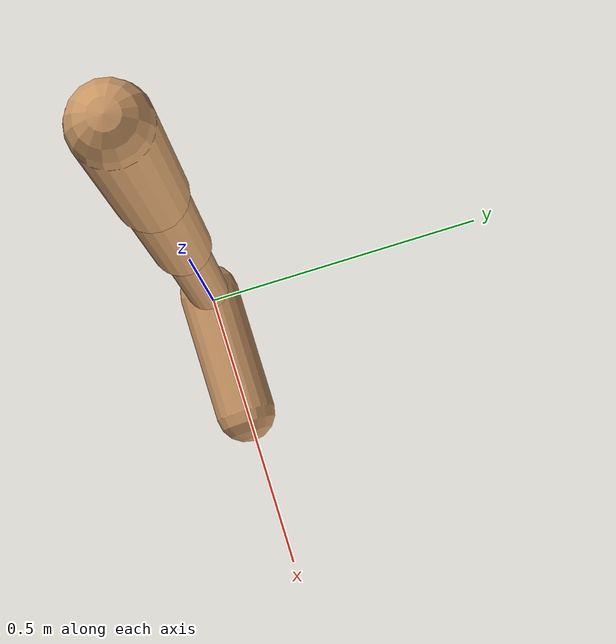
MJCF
<mujoco model="walker2d">
  <compiler angle="degree" coordinate="global" inertiafromgeom="true" />
  <default>
    <joint armature="0.01" damping=".1" limited="true" />
    <geom conaffinity="0" condim="3" contype="1" density="1000" friction="0.8 .1 .1" rgba="0.8 0.6 .4 1" />
  </default>
  <option integrator="RK4" timestep="0.002" />
  <worldbody>

    <body name="torso" pos="0 0 -0.06903565974591537">
      <joint armature="0" axis="1 0 0" damping="0" limited="false" name="ignorex" pos="0 0 0" stiffness="0" type="slide" />
      <joint armature="0" axis="0 0 1" damping="0" limited="false" name="ignorez" pos="0 0 0" ref="1.25" stiffness="0" type="slide" />
      <joint armature="0" axis="0 1 0" damping="0" limited="false" name="ignorey" pos="0 0 0" stiffness="0" type="hinge" />
      <geom fromto="0 0 1.45 0 0 1.05" name="torso_geom" size="0.049674926190524604" type="capsule" />
      <body name="thigh">
        <joint axis="0 -1 0" name="thigh_joint" pos="0 0 1.05" range="-150 0" type="hinge" />
        <geom fromto="0.0 0.0 1.05 0.0 0.0 0.6327011019849073" name="thigh_geom" size="0.045247690607623584" type="capsule" />
        <body name="leg" pos="0.0 0.0 0.03270110198490728">
          <joint axis="0 -1 0" name="leg_joint" pos="0 0 0.6" range="-150 0" type="hinge" />
          <geom fromto="0.0 0.0 0.6 0.0 0.0 0.13633455776100808" name="leg_geom" size="0.03619815248609887" type="capsule" />
          <body name="foot" pos="0.0 0.0 0.03633455776100808">
            <joint axis="0 -1 0" name="foot_joint" pos="0 0 0.1" range="-45 45" type="hinge" />
            <geom fromto="-0.0 0.0 0.1 0.22292688532180915 0.0 0.1" name="foot_geom" size="0.0520970020601762" type="capsule" />
          </body>
        </body>
      </body>

      <body name="thigh_left">
        <joint axis="0 -1 0" name="thigh_left_joint" pos="0 0 1.05" range="-150 0" type="hinge" />
        <geom fromto="0.0 0.0 1.05 0.0 0.0 0.6327011019849073" name="thigh_left_geom" rgba=".7 .3 .6 1" size="0.045247690607623584" type="capsule" />
        <body name="leg_left" pos="0.0 0.0 0.03270110198490728">
          <joint axis="0 -1 0" name="leg_left_joint" pos="0 0 0.6" range="-150 0" type="hinge" />
          <geom fromto="0.0 0.0 0.6 0.0 0.0 0.13633455776100808" name="leg_left_geom" rgba=".7 .3 .6 1" size="0.03619815248609887" type="capsule" />
          <body name="foot_left" pos="0.0 0.0 0.03633455776100808">
            <joint axis="0 -1 0" name="foot_left_joint" pos="0 0 0.1" range="-45 45" type="hinge" />
            <geom fromto="-0.0 0.0 0.1 0.22292688532180915 0.0 0.1" name="foot_left_geom" rgba=".7 .3 .6 1" size="0.0520970020601762" type="capsule" />
          </body>
        </body>
      </body>
    </body>
  </worldbody>
  <actuator>

    <motor ctrllimited="true" ctrlrange="-1.0 1.0" gear="100" joint="thigh_joint" />
    <motor ctrllimited="true" ctrlrange="-1.0 1.0" gear="100" joint="leg_joint" />
    <motor ctrllimited="true" ctrlrange="-1.0 1.0" gear="100" joint="foot_joint" />
    <motor ctrllimited="true" ctrlrange="-1.0 1.0" gear="100" joint="thigh_left_joint" />
    <motor ctrllimited="true" ctrlrange="-1.0 1.0" gear="100" joint="leg_left_joint" />
    <motor ctrllimited="true" ctrlrange="-1.0 1.0" gear="100" joint="foot_left_joint" />

  </actuator>
</mujoco>
